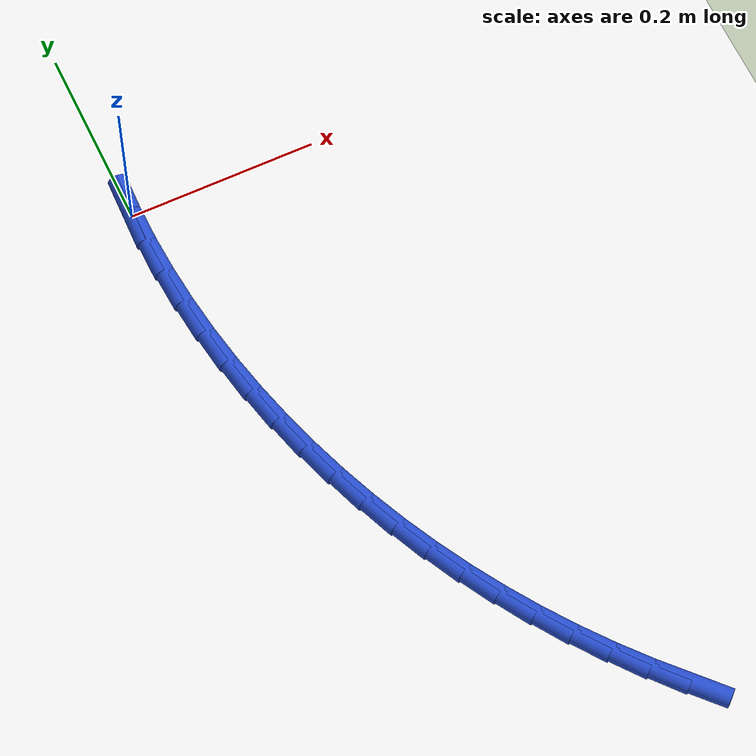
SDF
<sdf version="1.6">
 <world name="default">
  <model name="ground_plane">
   <static>1</static>
   <link name="link">
    <collision name="collision">
     <geometry><plane><normal>0 0 1</normal><size>100 100</size></plane></geometry>
     <surface><friction><ode><mu>100</mu><mu2>50</mu2></ode></friction></surface>
    </collision>
    <visual name="visual">
     <cast_shadows>0</cast_shadows>
     <geometry><plane><normal>0 0 1</normal><size>100 100</size></plane></geometry>
     <material>
      <script><uri>file://media/materials/scripts/gazebo.material</uri><name>Gazebo/WhiteGlow</name></script>
     </material>
    </visual>
   </link>
  </model>
  <model name="line">
   <link name="link_0">
    <pose>-2.0816681711721685e-17 4.163336342344337e-17 0.01 0 1.57 1.536541923862688</pose>
    <collision name="collision">
     <geometry><cylinder><radius>0.01</radius><length>0.08</length></cylinder></geometry>
    </collision>
    <visual name="visual">
     <material>
      <script><name>Gazebo/Blue</name><uri>file://media/materials/scripts/gazebo.material</uri></script>
     </material>
     <geometry><cylinder><radius>0.01</radius><length>0.08</length></cylinder></geometry>
    </visual>
   </link>
   <link name="link_151">
    <pose>0.277640730175052 -0.6914854593949578 0.01 0 1.57 -0.826547007223668</pose>
    <collision name="collision">
     <geometry><cylinder><radius>0.01</radius><length>0.08</length></cylinder></geometry>
    </collision>
    <visual name="visual">
     <material>
      <script><name>Gazebo/Blue</name><uri>file://media/materials/scripts/gazebo.material</uri></script>
     </material>
     <geometry><cylinder><radius>0.01</radius><length>0.08</length></cylinder></geometry>
    </visual>
   </link>
   <link name="link_152">
    <pose>0.25034506315869665 -0.661845639717984 0.01 0 1.57 -0.8673014479953058</pose>
    <collision name="collision">
     <geometry><cylinder><radius>0.01</radius><length>0.08</length></cylinder></geometry>
    </collision>
    <visual name="visual">
     <material>
      <script><name>Gazebo/Blue</name><uri>file://media/materials/scripts/gazebo.material</uri></script>
     </material>
     <geometry><cylinder><radius>0.01</radius><length>0.08</length></cylinder></geometry>
    </visual>
   </link>
   <link name="link_153">
    <pose>0.22432499745315945 -0.6311717412754871 0.01 0 1.57 -0.9079134420188385</pose>
    <collision name="collision">
     <geometry><cylinder><radius>0.01</radius><length>0.08</length></cylinder></geometry>
    </collision>
    <visual name="visual">
     <material>
      <script><name>Gazebo/Blue</name><uri>file://media/materials/scripts/gazebo.material</uri></script>
     </material>
     <geometry><cylinder><radius>0.01</radius><length>0.08</length></cylinder></geometry>
    </visual>
   </link>
   <link name="link_154">
    <pose>0.19960349244961417 -0.5995073272019843 0.01 0 1.57 -0.9483500199711999</pose>
    <collision name="collision">
     <geometry><cylinder><radius>0.01</radius><length>0.08</length></cylinder></geometry>
    </collision>
    <visual name="visual">
     <material>
      <script><name>Gazebo/Blue</name><uri>file://media/materials/scripts/gazebo.material</uri></script>
     </material>
     <geometry><cylinder><radius>0.01</radius><length>0.08</length></cylinder></geometry>
    </visual>
   </link>
   <link name="link_155">
    <pose>0.17620143965198867 -0.5668961608923737 0.01 0 1.57 -0.9886221429781075</pose>
    <collision name="collision">
     <geometry><cylinder><radius>0.01</radius><length>0.08</length></cylinder></geometry>
    </collision>
    <visual name="visual">
     <material>
      <script><name>Gazebo/Blue</name><uri>file://media/materials/scripts/gazebo.material</uri></script>
     </material>
     <geometry><cylinder><radius>0.01</radius><length>0.08</length></cylinder></geometry>
    </visual>
   </link>
   <link name="link_156">
    <pose>0.15413973056421146 -0.5333820057415548 0.01 0 1.57 -1.0287431556450553</pose>
    <collision name="collision">
     <geometry><cylinder><radius>0.01</radius><length>0.08</length></cylinder></geometry>
    </collision>
    <visual name="visual">
     <material>
      <script><name>Gazebo/Blue</name><uri>file://media/materials/scripts/gazebo.material</uri></script>
     </material>
     <geometry><cylinder><radius>0.01</radius><length>0.08</length></cylinder></geometry>
    </visual>
   </link>
   <link name="link_157">
    <pose>0.1334392566902109 -0.49900862514442723 0.01 0 1.57 -1.0687283449405167</pose>
    <collision name="collision">
     <geometry><cylinder><radius>0.01</radius><length>0.08</length></cylinder></geometry>
    </collision>
    <visual name="visual">
     <material>
      <script><name>Gazebo/Blue</name><uri>file://media/materials/scripts/gazebo.material</uri></script>
     </material>
     <geometry><cylinder><radius>0.01</radius><length>0.08</length></cylinder></geometry>
    </visual>
   </link>
   <link name="link_158">
    <pose>0.11412090953391511 -0.4638197824958893 0.01 0 1.57 -1.1085944939887704</pose>
    <collision name="collision">
     <geometry><cylinder><radius>0.01</radius><length>0.08</length></cylinder></geometry>
    </collision>
    <visual name="visual">
     <material>
      <script><name>Gazebo/Blue</name><uri>file://media/materials/scripts/gazebo.material</uri></script>
     </material>
     <geometry><cylinder><radius>0.01</radius><length>0.08</length></cylinder></geometry>
    </visual>
   </link>
   <link name="link_159">
    <pose>0.09620558059925333 -0.42785924119084173 0.01 0 1.57 -1.1483594354681377</pose>
    <collision name="collision">
     <geometry><cylinder><radius>0.01</radius><length>0.08</length></cylinder></geometry>
    </collision>
    <visual name="visual">
     <material>
      <script><name>Gazebo/Blue</name><uri>file://media/materials/scripts/gazebo.material</uri></script>
     </material>
     <geometry><cylinder><radius>0.01</radius><length>0.08</length></cylinder></geometry>
    </visual>
   </link>
   <link name="link_160">
    <pose>0.07971416139015355 -0.39117076462418315 0.01 0 1.57 -1.1880415680710066</pose>
    <collision name="collision">
     <geometry><cylinder><radius>0.01</radius><length>0.08</length></cylinder></geometry>
    </collision>
    <visual name="visual">
     <material>
      <script><name>Gazebo/Blue</name><uri>file://media/materials/scripts/gazebo.material</uri></script>
     </material>
     <geometry><cylinder><radius>0.01</radius><length>0.08</length></cylinder></geometry>
    </visual>
   </link>
   <link name="link_161">
    <pose>0.06466756616588677 -0.3537981770591656 0.01 0 1.57 -1.2276648278846012</pose>
    <collision name="collision">
     <geometry><cylinder><radius>0.01</radius><length>0.08</length></cylinder></geometry>
    </collision>
    <visual name="visual">
     <material>
      <script><name>Gazebo/Blue</name><uri>file://media/materials/scripts/gazebo.material</uri></script>
     </material>
     <geometry><cylinder><radius>0.01</radius><length>0.08</length></cylinder></geometry>
    </visual>
   </link>
   <link name="link_162">
    <pose>0.0510916728851093 -0.31579858017750256 0.01 0 1.57 -1.267332068498333</pose>
    <collision name="collision">
     <geometry><cylinder><radius>0.01</radius><length>0.08</length></cylinder></geometry>
    </collision>
    <visual name="visual">
     <material>
      <script><name>Gazebo/Blue</name><uri>file://media/materials/scripts/gazebo.material</uri></script>
     </material>
     <geometry><cylinder><radius>0.01</radius><length>0.08</length></cylinder></geometry>
    </visual>
   </link>
   <link name="link_163">
    <pose>0.039023503512743696 -0.27725888480587163 0.01 0 1.57 -1.3072058597799945</pose>
    <collision name="collision">
     <geometry><cylinder><radius>0.01</radius><length>0.08</length></cylinder></geometry>
    </collision>
    <visual name="visual">
     <material>
      <script><name>Gazebo/Blue</name><uri>file://media/materials/scripts/gazebo.material</uri></script>
     </material>
     <geometry><cylinder><radius>0.01</radius><length>0.08</length></cylinder></geometry>
    </visual>
   </link>
   <link name="link_164">
    <pose>0.02850159867567468 -0.23827006404563889 0.01 0 1.57 -1.347450089187779</pose>
    <collision name="collision">
     <geometry><cylinder><radius>0.01</radius><length>0.08</length></cylinder></geometry>
    </collision>
    <visual name="visual">
     <material>
      <script><name>Gazebo/Blue</name><uri>file://media/materials/scripts/gazebo.material</uri></script>
     </material>
     <geometry><cylinder><radius>0.01</radius><length>0.08</length></cylinder></geometry>
    </visual>
   </link>
   <link name="link_165">
    <pose>0.019564499000786207 -0.1989230909981679 0.01 0 1.57 -1.3882273941901</pose>
    <collision name="collision">
     <geometry><cylinder><radius>0.01</radius><length>0.08</length></cylinder></geometry>
    </collision>
    <visual name="visual">
     <material>
      <script><name>Gazebo/Blue</name><uri>file://media/materials/scripts/gazebo.material</uri></script>
     </material>
     <geometry><cylinder><radius>0.01</radius><length>0.08</length></cylinder></geometry>
    </visual>
   </link>
   <link name="link_166">
    <pose>0.012250745114962503 -0.1593089387648234 0.01 0 1.57 -1.429699055710546</pose>
    <collision name="collision">
     <geometry><cylinder><radius>0.01</radius><length>0.08</length></cylinder></geometry>
    </collision>
    <visual name="visual">
     <material>
      <script><name>Gazebo/Blue</name><uri>file://media/materials/scripts/gazebo.material</uri></script>
     </material>
     <geometry><cylinder><radius>0.01</radius><length>0.08</length></cylinder></geometry>
    </visual>
   </link>
   <link name="link_167">
    <pose>0.006598877645087811 -0.11951858044696995 0.01 0 1.57 -1.4720245710965336</pose>
    <collision name="collision">
     <geometry><cylinder><radius>0.01</radius><length>0.08</length></cylinder></geometry>
    </collision>
    <visual name="visual">
     <material>
      <script><name>Gazebo/Blue</name><uri>file://media/materials/scripts/gazebo.material</uri></script>
     </material>
     <geometry><cylinder><radius>0.01</radius><length>0.08</length></cylinder></geometry>
    </visual>
   </link>
   <link name="link_168">
    <pose>0.002647437218046278 -0.07964298914597123 0.01 0 1.57 -1.5153608073158575</pose>
    <collision name="collision">
     <geometry><cylinder><radius>0.01</radius><length>0.08</length></cylinder></geometry>
    </collision>
    <visual name="visual">
     <material>
      <script><name>Gazebo/Blue</name><uri>file://media/materials/scripts/gazebo.material</uri></script>
     </material>
     <geometry><cylinder><radius>0.01</radius><length>0.08</length></cylinder></geometry>
    </visual>
   </link>
   <link name="link_169">
    <pose>0.00043496446072229314 -0.03977313796319338 0.01 0 1.57 -1.559860626375195</pose>
    <collision name="collision">
     <geometry><cylinder><radius>0.01</radius><length>0.08</length></cylinder></geometry>
    </collision>
    <visual name="visual">
     <material>
      <script><name>Gazebo/Blue</name><uri>file://media/materials/scripts/gazebo.material</uri></script>
     </material>
     <geometry><cylinder><radius>0.01</radius><length>0.08</length></cylinder></geometry>
    </visual>
   </link>
   <link name="link_170">
    <pose>-1.214306433183765e-17 -1.5265566588595902e-16 0.01 0 1.57 1.535921784433255</pose>
    <collision name="collision">
     <geometry><cylinder><radius>0.01</radius><length>0.08</length></cylinder></geometry>
    </collision>
    <visual name="visual">
     <material>
      <script><name>Gazebo/Blue</name><uri>file://media/materials/scripts/gazebo.material</uri></script>
     </material>
     <geometry><cylinder><radius>0.01</radius><length>0.08</length></cylinder></geometry>
    </visual>
   </link>
  </model>
 </world>
</sdf>
